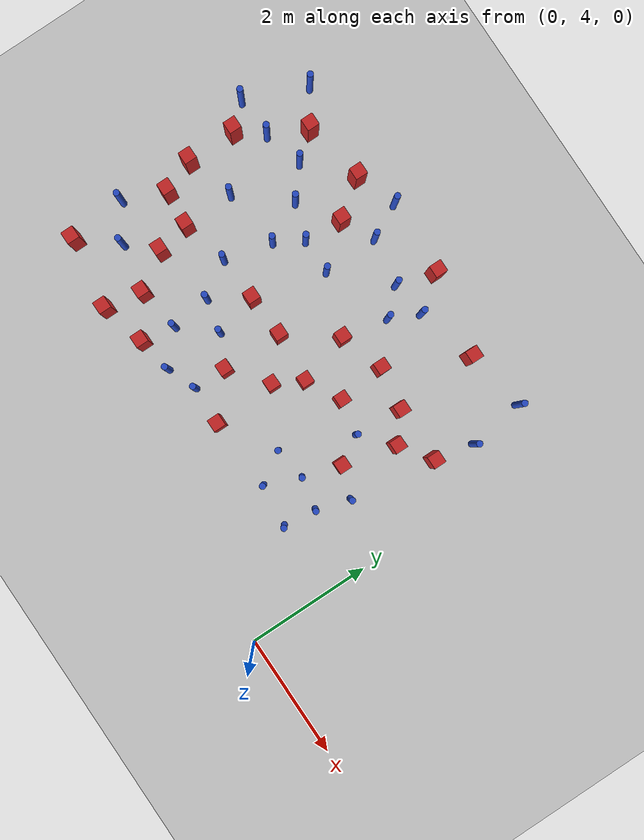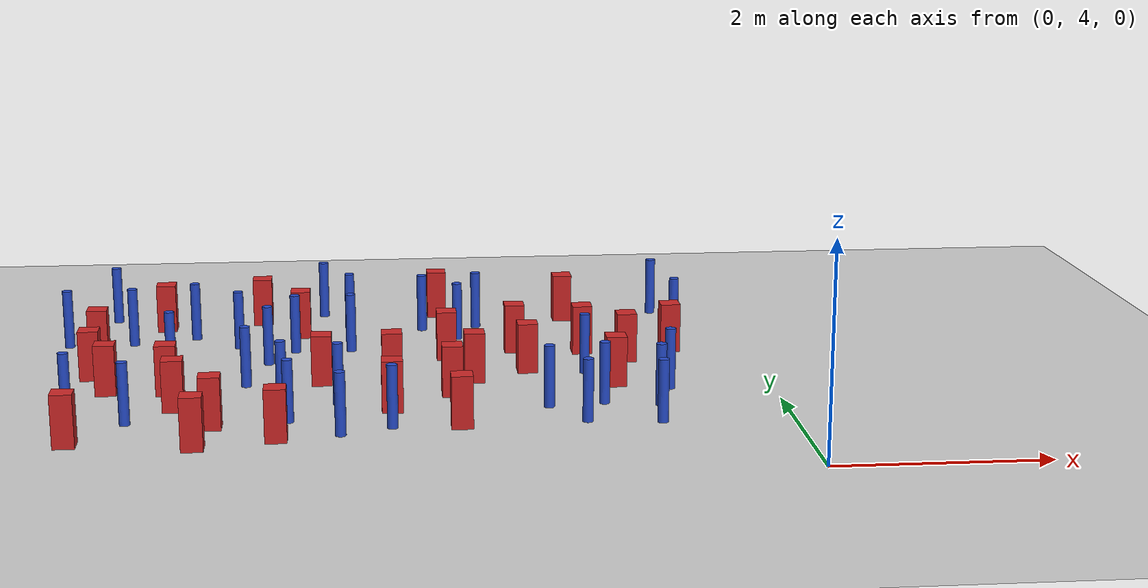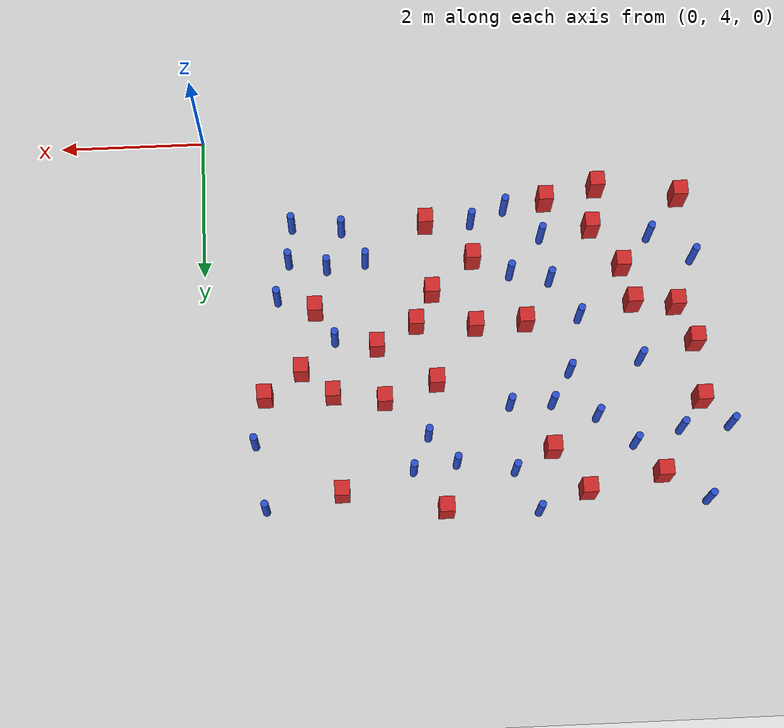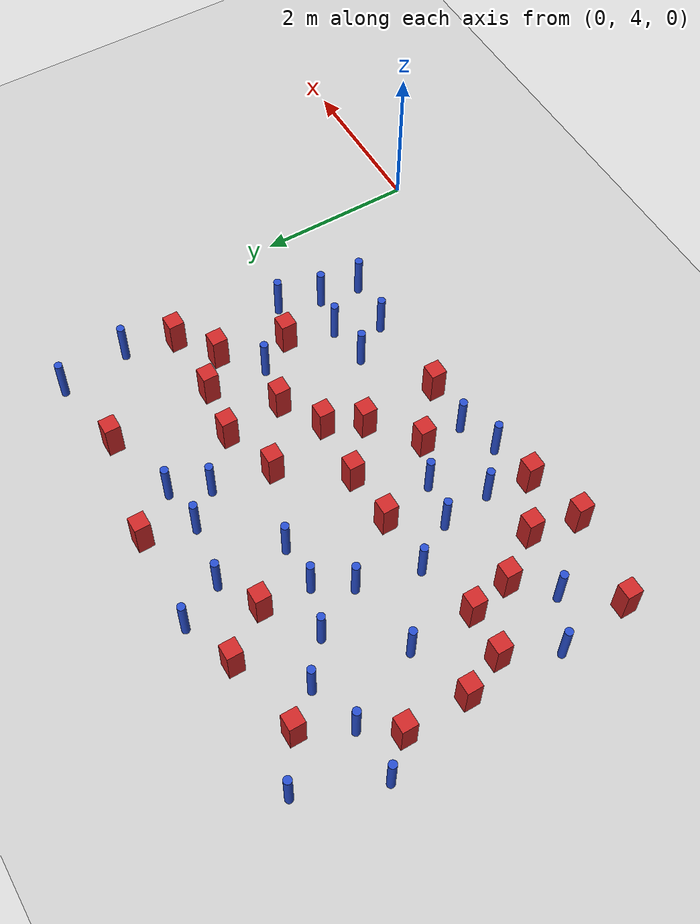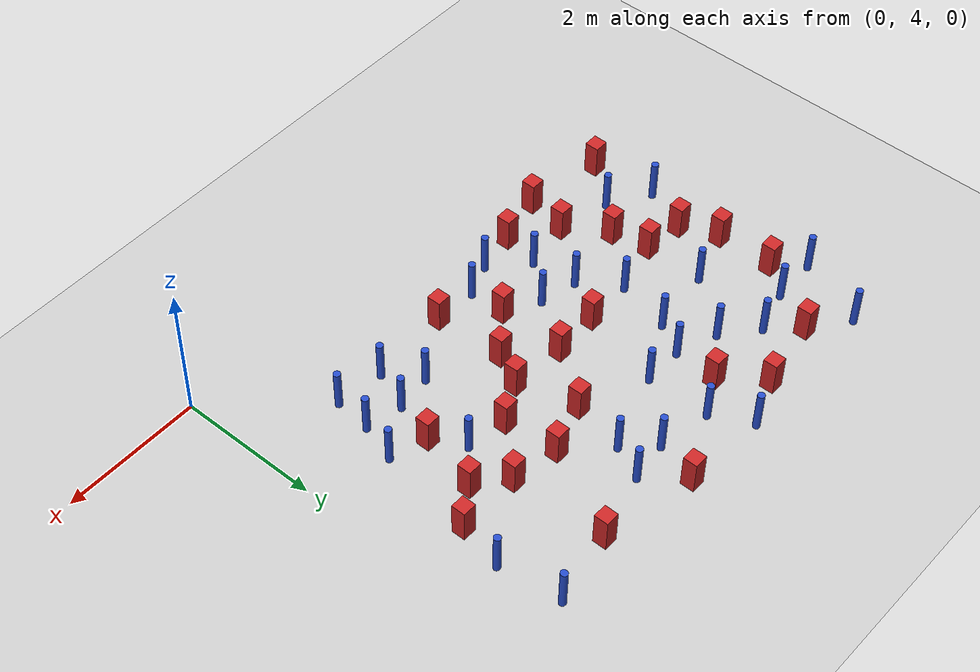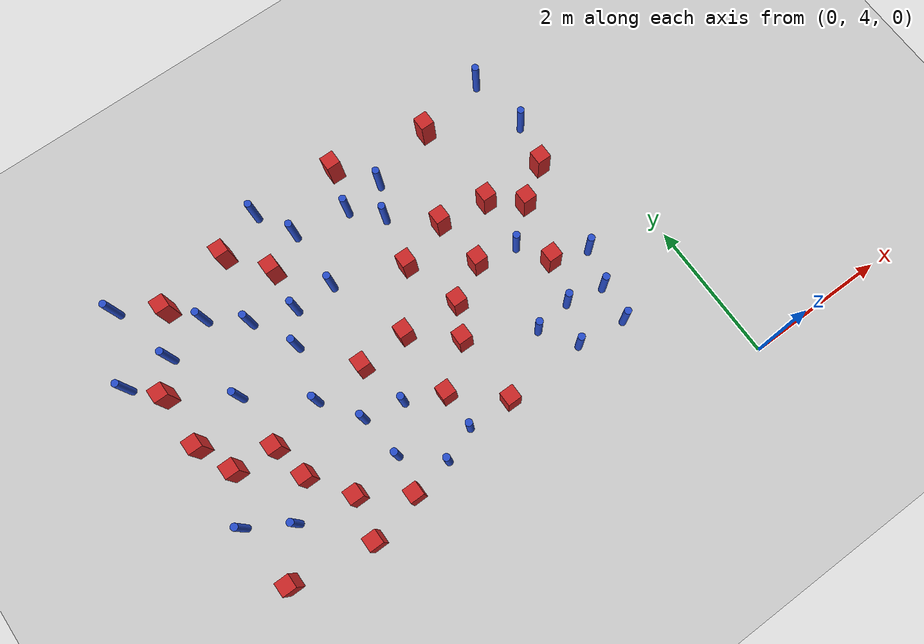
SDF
<sdf version="1.6">
 <world name="default">
  <model name="ground_plane">
   <static>1</static>
   <link name="link">
    <collision name="collision">
     <geometry><plane><normal>0 0 1</normal><size>100 100</size></plane></geometry>
     <surface><friction><ode><mu>100</mu><mu2>50</mu2></ode></friction></surface>
    </collision>
    <visual name="visual">
     <cast_shadows>0</cast_shadows>
     <geometry><plane><normal>0 0 1</normal><size>100 100</size></plane></geometry>
     <material>
      <ambient>1.0 1.0 1.0 1.0</ambient>
      <diffuse>0.8 0.8 0.8 1.0</diffuse>
      <specular>0.01 0.01 0.01 1.000000</specular>
     </material>
    </visual>
   </link>
  </model>
  <model name="square_post_obstacle9">
   <static>true</static>
   <pose>-3.10520400773 7.67391111457 -6.11067671241e-07 -5.50515727128e-06 -8.79689657224e-07 2.37013304536e-05</pose>
   <link name="link">
    <pose>0 0 0.25 0 -0 0</pose>
    <inertial>
     <mass>100</mass>
     <inertia>
      <ixx>0.166667</ixx>
      <ixy>0</ixy>
      <ixz>0</ixz>
      <iyy>0.166667</iyy>
      <iyz>0</iyz>
      <izz>0.166667</izz>
     </inertia>
    </inertial>
    <collision name="collision"><geometry><box><size>.2 .2 .5</size></box></geometry></collision>
    <visual name="visual">
     <geometry><box><size>.2 .2 .5</size></box></geometry>
     <material>
      <script><name>Gazebo/Red</name><uri>file://media/materials/scripts/gazebo.material</uri></script>
     </material>
    </visual>
   </link>
  </model>
  <model name="square_post_obstacle12">
   <static>true</static>
   <pose>-4.59357424023 8.65505979291 -6.11067671241e-07 -5.50515727128e-06 -8.79689657224e-07 2.37013304536e-05</pose>
   <link name="link">
    <pose>0 0 0.25 0 -0 0</pose>
    <inertial>
     <mass>100</mass>
     <inertia>
      <ixx>0.166667</ixx>
      <ixy>0</ixy>
      <ixz>0</ixz>
      <iyy>0.166667</iyy>
      <iyz>0</iyz>
      <izz>0.166667</izz>
     </inertia>
    </inertial>
    <collision name="collision"><geometry><box><size>.2 .2 .5</size></box></geometry></collision>
    <visual name="visual">
     <geometry><box><size>.2 .2 .5</size></box></geometry>
     <material>
      <script><name>Gazebo/Red</name><uri>file://media/materials/scripts/gazebo.material</uri></script>
     </material>
    </visual>
   </link>
  </model>
  <model name="square_post_obstacle17">
   <static>true</static>
   <pose>-3.10708419288 6.39974846675 -6.11067671241e-07 -5.50515727128e-06 -8.79689657224e-07 2.37013304536e-05</pose>
   <link name="link">
    <pose>0 0 0.25 0 -0 0</pose>
    <inertial>
     <mass>100</mass>
     <inertia>
      <ixx>0.166667</ixx>
      <ixy>0</ixy>
      <ixz>0</ixz>
      <iyy>0.166667</iyy>
      <iyz>0</iyz>
      <izz>0.166667</izz>
     </inertia>
    </inertial>
    <collision name="collision"><geometry><box><size>.2 .2 .5</size></box></geometry></collision>
    <visual name="visual">
     <geometry><box><size>.2 .2 .5</size></box></geometry>
     <material>
      <script><name>Gazebo/Red</name><uri>file://media/materials/scripts/gazebo.material</uri></script>
     </material>
    </visual>
   </link>
  </model>
  <model name="square_post_obstacle18">
   <static>true</static>
   <pose>-3.13976255118 9.4031329805 -6.11067671241e-07 -5.50515727128e-06 -8.79689657224e-07 2.37013304536e-05</pose>
   <link name="link">
    <pose>0 0 0.25 0 -0 0</pose>
    <inertial>
     <mass>100</mass>
     <inertia>
      <ixx>0.166667</ixx>
      <ixy>0</ixy>
      <ixz>0</ixz>
      <iyy>0.166667</iyy>
      <iyz>0</iyz>
      <izz>0.166667</izz>
     </inertia>
    </inertial>
    <collision name="collision"><geometry><box><size>.2 .2 .5</size></box></geometry></collision>
    <visual name="visual">
     <geometry><box><size>.2 .2 .5</size></box></geometry>
     <material>
      <script><name>Gazebo/Red</name><uri>file://media/materials/scripts/gazebo.material</uri></script>
     </material>
    </visual>
   </link>
  </model>
  <model name="pole_obstacle11">
   <static>true</static>
   <pose>-5.68892894225 8.63027807105 -9.47619616065e-06 5.49618799737e-07 2.36310414065e-07 -1.55090534796e-07</pose>
   <link name="link">
    <pose>0 0 0.3 0 -0 0</pose>
    <inertial>
     <mass>1</mass>
     <inertia><ixx>0.145833</ixx><ixy>0</ixy><ixz>0</ixz><iyy>0.145833</iyy><iyz>0</iyz><izz>0.125</izz></inertia>
    </inertial>
    <collision name="collision">
     <geometry><cylinder><radius>0.05</radius><length>.6</length></cylinder></geometry>
    </collision>
    <visual name="visual">
     <geometry><cylinder><radius>0.05</radius><length>.6</length></cylinder></geometry>
     <material>
      <script><name>Gazebo/Blue</name><uri>file://media/materials/scripts/gazebo.material</uri></script>
     </material>
    </visual>
   </link>
  </model>
  <model name="pole_obstacle13">
   <static>true</static>
   <pose>-5.8590574564 7.4796731645 -9.47619616065e-06 5.49618799737e-07 2.36310414037e-07 -1.55090534814e-07</pose>
   <link name="link">
    <pose>0 0 0.3 0 -0 0</pose>
    <inertial>
     <mass>1</mass>
     <inertia><ixx>0.145833</ixx><ixy>0</ixy><ixz>0</ixz><iyy>0.145833</iyy><iyz>0</iyz><izz>0.125</izz></inertia>
    </inertial>
    <collision name="collision">
     <geometry><cylinder><radius>0.05</radius><length>.6</length></cylinder></geometry>
    </collision>
    <visual name="visual">
     <geometry><cylinder><radius>0.05</radius><length>.6</length></cylinder></geometry>
     <material>
      <script><name>Gazebo/Blue</name><uri>file://media/materials/scripts/gazebo.material</uri></script>
     </material>
    </visual>
   </link>
  </model>
  <model name="square_post_obstacle25">
   <static>true</static>
   <pose>-5.83177528714 6.65563990809 -6.11067671241e-07 -5.50515727128e-06 -8.79689657224e-07 2.37013304536e-05</pose>
   <link name="link">
    <pose>0 0 0.25 0 -0 0</pose>
    <inertial>
     <mass>100</mass>
     <inertia>
      <ixx>0.166667</ixx>
      <ixy>0</ixy>
      <ixz>0</ixz>
      <iyy>0.166667</iyy>
      <iyz>0</iyz>
      <izz>0.166667</izz>
     </inertia>
    </inertial>
    <collision name="collision"><geometry><box><size>.2 .2 .5</size></box></geometry></collision>
    <visual name="visual">
     <geometry><box><size>.2 .2 .5</size></box></geometry>
     <material>
      <script><name>Gazebo/Red</name><uri>file://media/materials/scripts/gazebo.material</uri></script>
     </material>
    </visual>
   </link>
  </model>
  <model name="square_post_obstacle28">
   <static>true</static>
   <pose>-2.32680000879 7.14502748202 -6.11067671241e-07 -5.50515727128e-06 -8.79689657224e-07 2.37013304536e-05</pose>
   <link name="link">
    <pose>0 0 0.25 0 -0 0</pose>
    <inertial>
     <mass>100</mass>
     <inertia>
      <ixx>0.166667</ixx>
      <ixy>0</ixy>
      <ixz>0</ixz>
      <iyy>0.166667</iyy>
      <iyz>0</iyz>
      <izz>0.166667</izz>
     </inertia>
    </inertial>
    <collision name="collision"><geometry><box><size>.2 .2 .5</size></box></geometry></collision>
    <visual name="visual">
     <geometry><box><size>.2 .2 .5</size></box></geometry>
     <material>
      <script><name>Gazebo/Red</name><uri>file://media/materials/scripts/gazebo.material</uri></script>
     </material>
    </visual>
   </link>
  </model>
  <model name="square_post_obstacle29">
   <static>true</static>
   <pose>-0.80299629133 7.79699949935 -6.11067671241e-07 -5.50515727128e-06 -8.79689657224e-07 2.37013304536e-05</pose>
   <link name="link">
    <pose>0 0 0.25 0 -0 0</pose>
    <inertial>
     <mass>100</mass>
     <inertia>
      <ixx>0.166667</ixx>
      <ixy>0</ixy>
      <ixz>0</ixz>
      <iyy>0.166667</iyy>
      <iyz>0</iyz>
      <izz>0.166667</izz>
     </inertia>
    </inertial>
    <collision name="collision"><geometry><box><size>.2 .2 .5</size></box></geometry></collision>
    <visual name="visual">
     <geometry><box><size>.2 .2 .5</size></box></geometry>
     <material>
      <script><name>Gazebo/Red</name><uri>file://media/materials/scripts/gazebo.material</uri></script>
     </material>
    </visual>
   </link>
  </model>
  <model name="square_post_obstacle34">
   <static>true</static>
   <pose>-6.41081111998 6.71567789708 -6.11067671241e-07 -5.50515727128e-06 -8.79689657224e-07 2.37013304536e-05</pose>
   <link name="link">
    <pose>0 0 0.25 0 -0 0</pose>
    <inertial>
     <mass>100</mass>
     <inertia>
      <ixx>0.166667</ixx>
      <ixy>0</ixy>
      <ixz>0</ixz>
      <iyy>0.166667</iyy>
      <iyz>0</iyz>
      <izz>0.166667</izz>
     </inertia>
    </inertial>
    <collision name="collision"><geometry><box><size>.2 .2 .5</size></box></geometry></collision>
    <visual name="visual">
     <geometry><box><size>.2 .2 .5</size></box></geometry>
     <material>
      <script><name>Gazebo/Red</name><uri>file://media/materials/scripts/gazebo.material</uri></script>
     </material>
    </visual>
   </link>
  </model>
  <model name="pole_obstacle32">
   <static>true</static>
   <pose>-4.89780439327 7.60901924395 -9.47619616065e-06 5.49618799737e-07 2.36310414037e-07 -1.55090534814e-07</pose>
   <link name="link">
    <pose>0 0 0.3 0 -0 0</pose>
    <inertial>
     <mass>1</mass>
     <inertia><ixx>0.145833</ixx><ixy>0</ixy><ixz>0</ixz><iyy>0.145833</iyy><iyz>0</iyz><izz>0.125</izz></inertia>
    </inertial>
    <collision name="collision">
     <geometry><cylinder><radius>0.05</radius><length>.6</length></cylinder></geometry>
    </collision>
    <visual name="visual">
     <geometry><cylinder><radius>0.05</radius><length>.6</length></cylinder></geometry>
     <material>
      <script><name>Gazebo/Blue</name><uri>file://media/materials/scripts/gazebo.material</uri></script>
     </material>
    </visual>
   </link>
  </model>
  <model name="pole_obstacle44">
   <static>true</static>
   <pose>-3.31545016881 8.80118948725 -9.4761961606e-06 5.49618799729e-07 2.36310414e-07 -1.55090534824e-07</pose>
   <link name="link">
    <pose>0 0 0.3 0 -0 0</pose>
    <inertial>
     <mass>1</mass>
     <inertia><ixx>0.145833</ixx><ixy>0</ixy><ixz>0</ixz><iyy>0.145833</iyy><iyz>0</iyz><izz>0.125</izz></inertia>
    </inertial>
    <collision name="collision">
     <geometry><cylinder><radius>0.05</radius><length>.6</length></cylinder></geometry>
    </collision>
    <visual name="visual">
     <geometry><cylinder><radius>0.05</radius><length>.6</length></cylinder></geometry>
     <material>
      <script><name>Gazebo/Blue</name><uri>file://media/materials/scripts/gazebo.material</uri></script>
     </material>
    </visual>
   </link>
  </model>
  <model name="square_post_obstacle50">
   <static>true</static>
   <pose>-2.39990678495 7.90200722985 -6.11067671241e-07 -5.50515727128e-06 -8.79689657224e-07 2.37013304536e-05</pose>
   <link name="link">
    <pose>0 0 0.25 0 -0 0</pose>
    <inertial>
     <mass>100</mass>
     <inertia>
      <ixx>0.166667</ixx>
      <ixy>0</ixy>
      <ixz>0</ixz>
      <iyy>0.166667</iyy>
      <iyz>0</iyz>
      <izz>0.166667</izz>
     </inertia>
    </inertial>
    <collision name="collision"><geometry><box><size>.2 .2 .5</size></box></geometry></collision>
    <visual name="visual">
     <geometry><box><size>.2 .2 .5</size></box></geometry>
     <material>
      <script><name>Gazebo/Red</name><uri>file://media/materials/scripts/gazebo.material</uri></script>
     </material>
    </visual>
   </link>
  </model>
  <model name="square_post_obstacle53">
   <static>true</static>
   <pose>-3.68842915676 5.93941228145 -6.11067671241e-07 -5.50515727128e-06 -8.79689657224e-07 2.37013304536e-05</pose>
   <link name="link">
    <pose>0 0 0.25 0 -0 0</pose>
    <inertial>
     <mass>100</mass>
     <inertia>
      <ixx>0.166667</ixx>
      <ixy>0</ixy>
      <ixz>0</ixz>
      <iyy>0.166667</iyy>
      <iyz>0</iyz>
      <izz>0.166667</izz>
     </inertia>
    </inertial>
    <collision name="collision"><geometry><box><size>.2 .2 .5</size></box></geometry></collision>
    <visual name="visual">
     <geometry><box><size>.2 .2 .5</size></box></geometry>
     <material>
      <script><name>Gazebo/Red</name><uri>file://media/materials/scripts/gazebo.material</uri></script>
     </material>
    </visual>
   </link>
  </model>
  <model name="pole_obstacle87">
   <static>true</static>
   <pose>-2.21909085241 5.92590816374 -9.47619616065e-06 5.49618799738e-07 2.3631041406e-07 -1.55090534801e-07</pose>
   <link name="link">
    <pose>0 0 0.3 0 -0 0</pose>
    <inertial>
     <mass>1</mass>
     <inertia><ixx>0.145833</ixx><ixy>0</ixy><ixz>0</ixz><iyy>0.145833</iyy><iyz>0</iyz><izz>0.125</izz></inertia>
    </inertial>
    <collision name="collision">
     <geometry><cylinder><radius>0.05</radius><length>.6</length></cylinder></geometry>
    </collision>
    <visual name="visual">
     <geometry><cylinder><radius>0.05</radius><length>.6</length></cylinder></geometry>
     <material>
      <script><name>Gazebo/Blue</name><uri>file://media/materials/scripts/gazebo.material</uri></script>
     </material>
    </visual>
   </link>
  </model>
  <model name="pole_obstacle89">
   <static>true</static>
   <pose>-1.68885730381 5.99806314761 -9.47619616065e-06 5.49618799737e-07 2.36310414061e-07 -1.550905348e-07</pose>
   <link name="link">
    <pose>0 0 0.3 0 -0 0</pose>
    <inertial>
     <mass>1</mass>
     <inertia><ixx>0.145833</ixx><ixy>0</ixy><ixz>0</ixz><iyy>0.145833</iyy><iyz>0</iyz><izz>0.125</izz></inertia>
    </inertial>
    <collision name="collision">
     <geometry><cylinder><radius>0.05</radius><length>.6</length></cylinder></geometry>
    </collision>
    <visual name="visual">
     <geometry><cylinder><radius>0.05</radius><length>.6</length></cylinder></geometry>
     <material>
      <script><name>Gazebo/Blue</name><uri>file://media/materials/scripts/gazebo.material</uri></script>
     </material>
    </visual>
   </link>
  </model>
  <model name="pole_obstacle90">
   <static>true</static>
   <pose>-2.95869986248 8.41366337919 -9.4761961606e-06 5.49618799729e-07 2.36310414e-07 -1.55090534824e-07</pose>
   <link name="link">
    <pose>0 0 0.3 0 -0 0</pose>
    <inertial>
     <mass>1</mass>
     <inertia><ixx>0.145833</ixx><ixy>0</ixy><ixz>0</ixz><iyy>0.145833</iyy><iyz>0</iyz><izz>0.125</izz></inertia>
    </inertial>
    <collision name="collision">
     <geometry><cylinder><radius>0.05</radius><length>.6</length></cylinder></geometry>
    </collision>
    <visual name="visual">
     <geometry><cylinder><radius>0.05</radius><length>.6</length></cylinder></geometry>
     <material>
      <script><name>Gazebo/Blue</name><uri>file://media/materials/scripts/gazebo.material</uri></script>
     </material>
    </visual>
   </link>
  </model>
  <model name="pole_obstacle91">
   <static>true</static>
   <pose>-4.08137680585 8.92950105228 -9.47619616065e-06 5.49618799737e-07 2.36310414065e-07 -1.55090534796e-07</pose>
   <link name="link">
    <pose>0 0 0.3 0 -0 0</pose>
    <inertial>
     <mass>1</mass>
     <inertia><ixx>0.145833</ixx><ixy>0</ixy><ixz>0</ixz><iyy>0.145833</iyy><iyz>0</iyz><izz>0.125</izz></inertia>
    </inertial>
    <collision name="collision">
     <geometry><cylinder><radius>0.05</radius><length>.6</length></cylinder></geometry>
    </collision>
    <visual name="visual">
     <geometry><cylinder><radius>0.05</radius><length>.6</length></cylinder></geometry>
     <material>
      <script><name>Gazebo/Blue</name><uri>file://media/materials/scripts/gazebo.material</uri></script>
     </material>
    </visual>
   </link>
  </model>
  <model name="pole_obstacle106">
   <static>true</static>
   <pose>-4.19222896986 6.18269097495 -9.47619616065e-06 5.49618799737e-07 2.36310414037e-07 -1.55090534814e-07</pose>
   <link name="link">
    <pose>0 0 0.3 0 -0 0</pose>
    <inertial>
     <mass>1</mass>
     <inertia><ixx>0.145833</ixx><ixy>0</ixy><ixz>0</ixz><iyy>0.145833</iyy><iyz>0</iyz><izz>0.125</izz></inertia>
    </inertial>
    <collision name="collision">
     <geometry><cylinder><radius>0.05</radius><length>.6</length></cylinder></geometry>
    </collision>
    <visual name="visual">
     <geometry><cylinder><radius>0.05</radius><length>.6</length></cylinder></geometry>
     <material>
      <script><name>Gazebo/Blue</name><uri>file://media/materials/scripts/gazebo.material</uri></script>
     </material>
    </visual>
   </link>
  </model>
  <model name="pole_obstacle108">
   <static>true</static>
   <pose>-6.70554110216 6.05481949887 -9.47619616065e-06 5.49618799737e-07 2.36310414037e-07 -1.55090534814e-07</pose>
   <link name="link">
    <pose>0 0 0.3 0 -0 0</pose>
    <inertial>
     <mass>1</mass>
     <inertia><ixx>0.145833</ixx><ixy>0</ixy><ixz>0</ixz><iyy>0.145833</iyy><iyz>0</iyz><izz>0.125</izz></inertia>
    </inertial>
    <collision name="collision">
     <geometry><cylinder><radius>0.05</radius><length>.6</length></cylinder></geometry>
    </collision>
    <visual name="visual">
     <geometry><cylinder><radius>0.05</radius><length>.6</length></cylinder></geometry>
     <material>
      <script><name>Gazebo/Blue</name><uri>file://media/materials/scripts/gazebo.material</uri></script>
     </material>
    </visual>
   </link>
  </model>
  <model name="pole_obstacle118">
   <static>true</static>
   <pose>-1.22582894746 5.36766510773 -9.47619616065e-06 5.49618799737e-07 2.36310414061e-07 -1.550905348e-07</pose>
   <link name="link">
    <pose>0 0 0.3 0 -0 0</pose>
    <inertial>
     <mass>1</mass>
     <inertia><ixx>0.145833</ixx><ixy>0</ixy><ixz>0</ixz><iyy>0.145833</iyy><iyz>0</iyz><izz>0.125</izz></inertia>
    </inertial>
    <collision name="collision">
     <geometry><cylinder><radius>0.05</radius><length>.6</length></cylinder></geometry>
    </collision>
    <visual name="visual">
     <geometry><cylinder><radius>0.05</radius><length>.6</length></cylinder></geometry>
     <material>
      <script><name>Gazebo/Blue</name><uri>file://media/materials/scripts/gazebo.material</uri></script>
     </material>
    </visual>
   </link>
  </model>
  <model name="square_post_obstacle110">
   <static>true</static>
   <pose>-5.01406977634 9.22863512362 -6.11067671241e-07 -5.50515727128e-06 -8.79689657224e-07 2.37013304536e-05</pose>
   <link name="link">
    <pose>0 0 0.25 0 -0 0</pose>
    <inertial>
     <mass>100</mass>
     <inertia>
      <ixx>0.166667</ixx>
      <ixy>0</ixy>
      <ixz>0</ixz>
      <iyy>0.166667</iyy>
      <iyz>0</iyz>
      <izz>0.166667</izz>
     </inertia>
    </inertial>
    <collision name="collision"><geometry><box><size>.2 .2 .5</size></box></geometry></collision>
    <visual name="visual">
     <geometry><box><size>.2 .2 .5</size></box></geometry>
     <material>
      <script><name>Gazebo/Red</name><uri>file://media/materials/scripts/gazebo.material</uri></script>
     </material>
    </visual>
   </link>
  </model>
  <model name="square_post_obstacle111">
   <static>true</static>
   <pose>-5.34558124098 5.550273098 -6.11067671241e-07 -5.50515727128e-06 -8.79689657224e-07 2.37013304536e-05</pose>
   <link name="link">
    <pose>0 0 0.25 0 -0 0</pose>
    <inertial>
     <mass>100</mass>
     <inertia>
      <ixx>0.166667</ixx>
      <ixy>0</ixy>
      <ixz>0</ixz>
      <iyy>0.166667</iyy>
      <iyz>0</iyz>
      <izz>0.166667</izz>
     </inertia>
    </inertial>
    <collision name="collision"><geometry><box><size>.2 .2 .5</size></box></geometry></collision>
    <visual name="visual">
     <geometry><box><size>.2 .2 .5</size></box></geometry>
     <material>
      <script><name>Gazebo/Red</name><uri>file://media/materials/scripts/gazebo.material</uri></script>
     </material>
    </visual>
   </link>
  </model>
  <model name="pole_obstacle121">
   <static>true</static>
   <pose>-1.90893864054 5.44775988716 -9.47619616065e-06 5.49618799737e-07 2.36310414061e-07 -1.550905348e-07</pose>
   <link name="link">
    <pose>0 0 0.3 0 -0 0</pose>
    <inertial>
     <mass>1</mass>
     <inertia><ixx>0.145833</ixx><ixy>0</ixy><ixz>0</ixz><iyy>0.145833</iyy><iyz>0</iyz><izz>0.125</izz></inertia>
    </inertial>
    <collision name="collision">
     <geometry><cylinder><radius>0.05</radius><length>.6</length></cylinder></geometry>
    </collision>
    <visual name="visual">
     <geometry><cylinder><radius>0.05</radius><length>.6</length></cylinder></geometry>
     <material>
      <script><name>Gazebo/Blue</name><uri>file://media/materials/scripts/gazebo.material</uri></script>
     </material>
    </visual>
   </link>
  </model>
  <model name="pole_obstacle132">
   <static>true</static>
   <pose>-5.22111645906 8.24037704639 -9.47619616065e-06 5.49618799737e-07 2.36310414065e-07 -1.55090534796e-07</pose>
   <link name="link">
    <pose>0 0 0.3 0 -0 0</pose>
    <inertial>
     <mass>1</mass>
     <inertia><ixx>0.145833</ixx><ixy>0</ixy><ixz>0</ixz><iyy>0.145833</iyy><iyz>0</iyz><izz>0.125</izz></inertia>
    </inertial>
    <collision name="collision">
     <geometry><cylinder><radius>0.05</radius><length>.6</length></cylinder></geometry>
    </collision>
    <visual name="visual">
     <geometry><cylinder><radius>0.05</radius><length>.6</length></cylinder></geometry>
     <material>
      <script><name>Gazebo/Blue</name><uri>file://media/materials/scripts/gazebo.material</uri></script>
     </material>
    </visual>
   </link>
  </model>
  <model name="pole_obstacle136">
   <static>true</static>
   <pose>-4.36138820411 9.4787079076 -9.47619616065e-06 5.49618799737e-07 2.36310414065e-07 -1.55090534796e-07</pose>
   <link name="link">
    <pose>0 0 0.3 0 -0 0</pose>
    <inertial>
     <mass>1</mass>
     <inertia><ixx>0.145833</ixx><ixy>0</ixy><ixz>0</ixz><iyy>0.145833</iyy><iyz>0</iyz><izz>0.125</izz></inertia>
    </inertial>
    <collision name="collision">
     <geometry><cylinder><radius>0.05</radius><length>.6</length></cylinder></geometry>
    </collision>
    <visual name="visual">
     <geometry><cylinder><radius>0.05</radius><length>.6</length></cylinder></geometry>
     <material>
      <script><name>Gazebo/Blue</name><uri>file://media/materials/scripts/gazebo.material</uri></script>
     </material>
    </visual>
   </link>
  </model>
  <model name="square_post_obstacle132">
   <static>true</static>
   <pose>-3.06743627781 5.39423438234 -6.11067671241e-07 -5.50515727128e-06 -8.79689657224e-07 2.37013304536e-05</pose>
   <link name="link">
    <pose>0 0 0.25 0 -0 0</pose>
    <inertial>
     <mass>100</mass>
     <inertia>
      <ixx>0.166667</ixx>
      <ixy>0</ixy>
      <ixz>0</ixz>
      <iyy>0.166667</iyy>
      <iyz>0</iyz>
      <izz>0.166667</izz>
     </inertia>
    </inertial>
    <collision name="collision"><geometry><box><size>.2 .2 .5</size></box></geometry></collision>
    <visual name="visual">
     <geometry><box><size>.2 .2 .5</size></box></geometry>
     <material>
      <script><name>Gazebo/Red</name><uri>file://media/materials/scripts/gazebo.material</uri></script>
     </material>
    </visual>
   </link>
  </model>
  <model name="square_post_obstacle134">
   <static>true</static>
   <pose>-2.87106219257 6.8459728696 -6.11067671241e-07 -5.50515727128e-06 -8.79689657224e-07 2.37013304536e-05</pose>
   <link name="link">
    <pose>0 0 0.25 0 -0 0</pose>
    <inertial>
     <mass>100</mass>
     <inertia>
      <ixx>0.166667</ixx>
      <ixy>0</ixy>
      <ixz>0</ixz>
      <iyy>0.166667</iyy>
      <iyz>0</iyz>
      <izz>0.166667</izz>
     </inertia>
    </inertial>
    <collision name="collision"><geometry><box><size>.2 .2 .5</size></box></geometry></collision>
    <visual name="visual">
     <geometry><box><size>.2 .2 .5</size></box></geometry>
     <material>
      <script><name>Gazebo/Red</name><uri>file://media/materials/scripts/gazebo.material</uri></script>
     </material>
    </visual>
   </link>
  </model>
  <model name="pole_obstacle147">
   <static>true</static>
   <pose>-5.08563711147 6.84322508953 -9.47619616065e-06 5.49618799737e-07 2.36310414037e-07 -1.55090534814e-07</pose>
   <link name="link">
    <pose>0 0 0.3 0 -0 0</pose>
    <inertial>
     <mass>1</mass>
     <inertia><ixx>0.145833</ixx><ixy>0</ixy><ixz>0</ixz><iyy>0.145833</iyy><iyz>0</iyz><izz>0.125</izz></inertia>
    </inertial>
    <collision name="collision">
     <geometry><cylinder><radius>0.05</radius><length>.6</length></cylinder></geometry>
    </collision>
    <visual name="visual">
     <geometry><cylinder><radius>0.05</radius><length>.6</length></cylinder></geometry>
     <material>
      <script><name>Gazebo/Blue</name><uri>file://media/materials/scripts/gazebo.material</uri></script>
     </material>
    </visual>
   </link>
  </model>
  <model name="square_post_obstacle140">
   <static>true</static>
   <pose>-5.46480805117 4.94998237772 -6.11067671241e-07 -5.50515727128e-06 -8.79689657224e-07 2.37013304536e-05</pose>
   <link name="link">
    <pose>0 0 0.25 0 -0 0</pose>
    <inertial>
     <mass>100</mass>
     <inertia>
      <ixx>0.166667</ixx>
      <ixy>0</ixy>
      <ixz>0</ixz>
      <iyy>0.166667</iyy>
      <iyz>0</iyz>
      <izz>0.166667</izz>
     </inertia>
    </inertial>
    <collision name="collision"><geometry><box><size>.2 .2 .5</size></box></geometry></collision>
    <visual name="visual">
     <geometry><box><size>.2 .2 .5</size></box></geometry>
     <material>
      <script><name>Gazebo/Red</name><uri>file://media/materials/scripts/gazebo.material</uri></script>
     </material>
    </visual>
   </link>
  </model>
  <model name="pole_obstacle153">
   <static>true</static>
   <pose>-1.16851993089 5.89321200725 -9.47619616065e-06 5.49618799737e-07 2.36310414061e-07 -1.550905348e-07</pose>
   <link name="link">
    <pose>0 0 0.3 0 -0 0</pose>
    <inertial>
     <mass>1</mass>
     <inertia><ixx>0.145833</ixx><ixy>0</ixy><ixz>0</ixz><iyy>0.145833</iyy><iyz>0</iyz><izz>0.125</izz></inertia>
    </inertial>
    <collision name="collision">
     <geometry><cylinder><radius>0.05</radius><length>.6</length></cylinder></geometry>
    </collision>
    <visual name="visual">
     <geometry><cylinder><radius>0.05</radius><length>.6</length></cylinder></geometry>
     <material>
      <script><name>Gazebo/Blue</name><uri>file://media/materials/scripts/gazebo.material</uri></script>
     </material>
    </visual>
   </link>
  </model>
  <model name="pole_obstacle158">
   <static>true</static>
   <pose>-1.00125299259 6.42491153706 -9.47619616065e-06 5.49618799737e-07 2.36310414062e-07 -1.55090534799e-07</pose>
   <link name="link">
    <pose>0 0 0.3 0 -0 0</pose>
    <inertial>
     <mass>1</mass>
     <inertia><ixx>0.145833</ixx><ixy>0</ixy><ixz>0</ixz><iyy>0.145833</iyy><iyz>0</iyz><izz>0.125</izz></inertia>
    </inertial>
    <collision name="collision">
     <geometry><cylinder><radius>0.05</radius><length>.6</length></cylinder></geometry>
    </collision>
    <visual name="visual">
     <geometry><cylinder><radius>0.05</radius><length>.6</length></cylinder></geometry>
     <material>
      <script><name>Gazebo/Blue</name><uri>file://media/materials/scripts/gazebo.material</uri></script>
     </material>
    </visual>
   </link>
  </model>
  <model name="square_post_obstacle152">
   <static>true</static>
   <pose>-6.59672201512 5.13359720352 -6.11067671241e-07 -5.50515727128e-06 -8.79689657224e-07 2.37013304536e-05</pose>
   <link name="link">
    <pose>0 0 0.25 0 -0 0</pose>
    <inertial>
     <mass>100</mass>
     <inertia>
      <ixx>0.166667</ixx>
      <ixy>0</ixy>
      <ixz>0</ixz>
      <iyy>0.166667</iyy>
      <iyz>0</iyz>
      <izz>0.166667</izz>
     </inertia>
    </inertial>
    <collision name="collision"><geometry><box><size>.2 .2 .5</size></box></geometry></collision>
    <visual name="visual">
     <geometry><box><size>.2 .2 .5</size></box></geometry>
     <material>
      <script><name>Gazebo/Red</name><uri>file://media/materials/scripts/gazebo.material</uri></script>
     </material>
    </visual>
   </link>
  </model>
  <model name="pole_obstacle161">
   <static>true</static>
   <pose>-4.64735872723 5.66051486717 -9.47619616065e-06 5.49618799737e-07 2.36310414037e-07 -1.55090534814e-07</pose>
   <link name="link">
    <pose>0 0 0.3 0 -0 0</pose>
    <inertial>
     <mass>1</mass>
     <inertia><ixx>0.145833</ixx><ixy>0</ixy><ixz>0</ixz><iyy>0.145833</iyy><iyz>0</iyz><izz>0.125</izz></inertia>
    </inertial>
    <collision name="collision">
     <geometry><cylinder><radius>0.05</radius><length>.6</length></cylinder></geometry>
    </collision>
    <visual name="visual">
     <geometry><cylinder><radius>0.05</radius><length>.6</length></cylinder></geometry>
     <material>
      <script><name>Gazebo/Blue</name><uri>file://media/materials/scripts/gazebo.material</uri></script>
     </material>
    </visual>
   </link>
  </model>
  <model name="pole_obstacle163">
   <static>true</static>
   <pose>-1.76450702223 7.03633803925 -9.47619616065e-06 5.49618799737e-07 2.36310414061e-07 -1.550905348e-07</pose>
   <link name="link">
    <pose>0 0 0.3 0 -0 0</pose>
    <inertial>
     <mass>1</mass>
     <inertia><ixx>0.145833</ixx><ixy>0</ixy><ixz>0</ixz><iyy>0.145833</iyy><iyz>0</iyz><izz>0.125</izz></inertia>
    </inertial>
    <collision name="collision">
     <geometry><cylinder><radius>0.05</radius><length>.6</length></cylinder></geometry>
    </collision>
    <visual name="visual">
     <geometry><cylinder><radius>0.05</radius><length>.6</length></cylinder></geometry>
     <material>
      <script><name>Gazebo/Blue</name><uri>file://media/materials/scripts/gazebo.material</uri></script>
     </material>
    </visual>
   </link>
  </model>
  <model name="square_post_obstacle157">
   <static>true</static>
   <pose>-1.78697796886 9.13460655473 -6.11067671241e-07 -5.50515727128e-06 -8.79689657224e-07 2.37013304536e-05</pose>
   <link name="link">
    <pose>0 0 0.25 0 -0 0</pose>
    <inertial>
     <mass>100</mass>
     <inertia>
      <ixx>0.166667</ixx>
      <ixy>0</ixy>
      <ixz>0</ixz>
      <iyy>0.166667</iyy>
      <iyz>0</iyz>
      <izz>0.166667</izz>
     </inertia>
    </inertial>
    <collision name="collision"><geometry><box><size>.2 .2 .5</size></box></geometry></collision>
    <visual name="visual">
     <geometry><box><size>.2 .2 .5</size></box></geometry>
     <material>
      <script><name>Gazebo/Red</name><uri>file://media/materials/scripts/gazebo.material</uri></script>
     </material>
    </visual>
   </link>
  </model>
  <model name="pole_obstacle166">
   <static>true</static>
   <pose>-6.5836197024 9.41660353634 -9.47619616065e-06 5.49618799737e-07 2.36310414065e-07 -1.55090534796e-07</pose>
   <link name="link">
    <pose>0 0 0.3 0 -0 0</pose>
    <inertial>
     <mass>1</mass>
     <inertia><ixx>0.145833</ixx><ixy>0</ixy><ixz>0</ixz><iyy>0.145833</iyy><iyz>0</iyz><izz>0.125</izz></inertia>
    </inertial>
    <collision name="collision">
     <geometry><cylinder><radius>0.05</radius><length>.6</length></cylinder></geometry>
    </collision>
    <visual name="visual">
     <geometry><cylinder><radius>0.05</radius><length>.6</length></cylinder></geometry>
     <material>
      <script><name>Gazebo/Blue</name><uri>file://media/materials/scripts/gazebo.material</uri></script>
     </material>
    </visual>
   </link>
  </model>
  <model name="pole_obstacle171">
   <static>true</static>
   <pose>-0.781773965758 9.3216545401 -9.47619616065e-06 5.49618799737e-07 2.36310414038e-07 -1.55090534813e-07</pose>
   <link name="link">
    <pose>0 0 0.3 0 -0 0</pose>
    <inertial>
     <mass>1</mass>
     <inertia><ixx>0.145833</ixx><ixy>0</ixy><ixz>0</ixz><iyy>0.145833</iyy><iyz>0</iyz><izz>0.125</izz></inertia>
    </inertial>
    <collision name="collision">
     <geometry><cylinder><radius>0.05</radius><length>.6</length></cylinder></geometry>
    </collision>
    <visual name="visual">
     <geometry><cylinder><radius>0.05</radius><length>.6</length></cylinder></geometry>
     <material>
      <script><name>Gazebo/Blue</name><uri>file://media/materials/scripts/gazebo.material</uri></script>
     </material>
    </visual>
   </link>
  </model>
  <model name="pole_obstacle174">
   <static>true</static>
   <pose>-4.72887429981 6.29952814697 -9.47619616065e-06 5.49618799737e-07 2.36310414037e-07 -1.55090534814e-07</pose>
   <link name="link">
    <pose>0 0 0.3 0 -0 0</pose>
    <inertial>
     <mass>1</mass>
     <inertia><ixx>0.145833</ixx><ixy>0</ixy><ixz>0</ixz><iyy>0.145833</iyy><iyz>0</iyz><izz>0.125</izz></inertia>
    </inertial>
    <collision name="collision">
     <geometry><cylinder><radius>0.05</radius><length>.6</length></cylinder></geometry>
    </collision>
    <visual name="visual">
     <geometry><cylinder><radius>0.05</radius><length>.6</length></cylinder></geometry>
     <material>
      <script><name>Gazebo/Blue</name><uri>file://media/materials/scripts/gazebo.material</uri></script>
     </material>
    </visual>
   </link>
  </model>
  <model name="pole_obstacle180">
   <static>true</static>
   <pose>-4.63759900778 8.03811379057 -9.47619616065e-06 5.49618799737e-07 2.36310414048e-07 -1.55090534806e-07</pose>
   <link name="link">
    <pose>0 0 0.3 0 -0 0</pose>
    <inertial>
     <mass>1</mass>
     <inertia><ixx>0.145833</ixx><ixy>0</ixy><ixz>0</ixz><iyy>0.145833</iyy><iyz>0</iyz><izz>0.125</izz></inertia>
    </inertial>
    <collision name="collision">
     <geometry><cylinder><radius>0.05</radius><length>.6</length></cylinder></geometry>
    </collision>
    <visual name="visual">
     <geometry><cylinder><radius>0.05</radius><length>.6</length></cylinder></geometry>
     <material>
      <script><name>Gazebo/Blue</name><uri>file://media/materials/scripts/gazebo.material</uri></script>
     </material>
    </visual>
   </link>
  </model>
  <model name="pole_obstacle181">
   <static>true</static>
   <pose>-6.13420948076 5.70394954944 -9.47619616065e-06 5.49618799737e-07 2.36310414037e-07 -1.55090534814e-07</pose>
   <link name="link">
    <pose>0 0 0.3 0 -0 0</pose>
    <inertial>
     <mass>1</mass>
     <inertia><ixx>0.145833</ixx><ixy>0</ixy><ixz>0</ixz><iyy>0.145833</iyy><iyz>0</iyz><izz>0.125</izz></inertia>
    </inertial>
    <collision name="collision">
     <geometry><cylinder><radius>0.05</radius><length>.6</length></cylinder></geometry>
    </collision>
    <visual name="visual">
     <geometry><cylinder><radius>0.05</radius><length>.6</length></cylinder></geometry>
     <material>
      <script><name>Gazebo/Blue</name><uri>file://media/materials/scripts/gazebo.material</uri></script>
     </material>
    </visual>
   </link>
  </model>
  <model name="pole_obstacle185">
   <static>true</static>
   <pose>-0.65810574908 8.43644554524 -9.47619616065e-06 5.49618799737e-07 2.36310414038e-07 -1.55090534813e-07</pose>
   <link name="link">
    <pose>0 0 0.3 0 -0 0</pose>
    <inertial>
     <mass>1</mass>
     <inertia><ixx>0.145833</ixx><ixy>0</ixy><ixz>0</ixz><iyy>0.145833</iyy><iyz>0</iyz><izz>0.125</izz></inertia>
    </inertial>
    <collision name="collision">
     <geometry><cylinder><radius>0.05</radius><length>.6</length></cylinder></geometry>
    </collision>
    <visual name="visual">
     <geometry><cylinder><radius>0.05</radius><length>.6</length></cylinder></geometry>
     <material>
      <script><name>Gazebo/Blue</name><uri>file://media/materials/scripts/gazebo.material</uri></script>
     </material>
    </visual>
   </link>
  </model>
  <model name="pole_obstacle187">
   <static>true</static>
   <pose>-6.31868444672 8.45355847555 -9.47619616065e-06 5.49618799737e-07 2.36310414065e-07 -1.55090534796e-07</pose>
   <link name="link">
    <pose>0 0 0.3 0 -0 0</pose>
    <inertial>
     <mass>1</mass>
     <inertia><ixx>0.145833</ixx><ixy>0</ixy><ixz>0</ixz><iyy>0.145833</iyy><iyz>0</iyz><izz>0.125</izz></inertia>
    </inertial>
    <collision name="collision">
     <geometry><cylinder><radius>0.05</radius><length>.6</length></cylinder></geometry>
    </collision>
    <visual name="visual">
     <geometry><cylinder><radius>0.05</radius><length>.6</length></cylinder></geometry>
     <material>
      <script><name>Gazebo/Blue</name><uri>file://media/materials/scripts/gazebo.material</uri></script>
     </material>
    </visual>
   </link>
  </model>
  <model name="square_post_obstacle183">
   <static>true</static>
   <pose>-1.50987133093 6.59828478231 -6.11067671241e-07 -5.50515727128e-06 -8.79689657224e-07 2.37013304536e-05</pose>
   <link name="link">
    <pose>0 0 0.25 0 -0 0</pose>
    <inertial>
     <mass>100</mass>
     <inertia>
      <ixx>0.166667</ixx>
      <ixy>0</ixy>
      <ixz>0</ixz>
      <iyy>0.166667</iyy>
      <iyz>0</iyz>
      <izz>0.166667</izz>
     </inertia>
    </inertial>
    <collision name="collision"><geometry><box><size>.2 .2 .5</size></box></geometry></collision>
    <visual name="visual">
     <geometry><box><size>.2 .2 .5</size></box></geometry>
     <material>
      <script><name>Gazebo/Red</name><uri>file://media/materials/scripts/gazebo.material</uri></script>
     </material>
    </visual>
   </link>
  </model>
  <model name="square_post_obstacle191">
   <static>true</static>
   <pose>-3.67170667967 6.90880596 -6.11067671241e-07 -5.50515727128e-06 -8.79689657224e-07 2.37013304536e-05</pose>
   <link name="link">
    <pose>0 0 0.25 0 -0 0</pose>
    <inertial>
     <mass>100</mass>
     <inertia>
      <ixx>0.166667</ixx>
      <ixy>0</ixy>
      <ixz>0</ixz>
      <iyy>0.166667</iyy>
      <iyz>0</iyz>
      <izz>0.166667</izz>
     </inertia>
    </inertial>
    <collision name="collision"><geometry><box><size>.2 .2 .5</size></box></geometry></collision>
    <visual name="visual">
     <geometry><box><size>.2 .2 .5</size></box></geometry>
     <material>
      <script><name>Gazebo/Red</name><uri>file://media/materials/scripts/gazebo.material</uri></script>
     </material>
    </visual>
   </link>
  </model>
  <model name="square_post_obstacle193">
   <static>true</static>
   <pose>-5.72479641321 6.12510439406 -6.11067671241e-07 -5.50515727128e-06 -8.79689657224e-07 2.37013304536e-05</pose>
   <link name="link">
    <pose>0 0 0.25 0 -0 0</pose>
    <inertial>
     <mass>100</mass>
     <inertia>
      <ixx>0.166667</ixx>
      <ixy>0</ixy>
      <ixz>0</ixz>
      <iyy>0.166667</iyy>
      <iyz>0</iyz>
      <izz>0.166667</izz>
     </inertia>
    </inertial>
    <collision name="collision"><geometry><box><size>.2 .2 .5</size></box></geometry></collision>
    <visual name="visual">
     <geometry><box><size>.2 .2 .5</size></box></geometry>
     <material>
      <script><name>Gazebo/Red</name><uri>file://media/materials/scripts/gazebo.material</uri></script>
     </material>
    </visual>
   </link>
  </model>
  <model name="square_post_obstacle194">
   <static>true</static>
   <pose>-1.71322314415 7.79558767806 -6.11067671241e-07 -5.50515727128e-06 -8.79689657224e-07 2.37013304536e-05</pose>
   <link name="link">
    <pose>0 0 0.25 0 -0 0</pose>
    <inertial>
     <mass>100</mass>
     <inertia>
      <ixx>0.166667</ixx>
      <ixy>0</ixy>
      <ixz>0</ixz>
      <iyy>0.166667</iyy>
      <iyz>0</iyz>
      <izz>0.166667</izz>
     </inertia>
    </inertial>
    <collision name="collision"><geometry><box><size>.2 .2 .5</size></box></geometry></collision>
    <visual name="visual">
     <geometry><box><size>.2 .2 .5</size></box></geometry>
     <material>
      <script><name>Gazebo/Red</name><uri>file://media/materials/scripts/gazebo.material</uri></script>
     </material>
    </visual>
   </link>
  </model>
  <model name="square_post_obstacle197">
   <static>true</static>
   <pose>-6.62270178769 7.24322714325 -6.11067671241e-07 -5.50515727128e-06 -8.79689657224e-07 2.37013304536e-05</pose>
   <link name="link">
    <pose>0 0 0.25 0 -0 0</pose>
    <inertial>
     <mass>100</mass>
     <inertia>
      <ixx>0.166667</ixx>
      <ixy>0</ixy>
      <ixz>0</ixz>
      <iyy>0.166667</iyy>
      <iyz>0</iyz>
      <izz>0.166667</izz>
     </inertia>
    </inertial>
    <collision name="collision"><geometry><box><size>.2 .2 .5</size></box></geometry></collision>
    <visual name="visual">
     <geometry><box><size>.2 .2 .5</size></box></geometry>
     <material>
      <script><name>Gazebo/Red</name><uri>file://media/materials/scripts/gazebo.material</uri></script>
     </material>
    </visual>
   </link>
  </model>
  <model name="pole_obstacle196">
   <static>true</static>
   <pose>-4.07028028981 8.03824200613 -9.47619616065e-06 5.49618799737e-07 2.36310414048e-07 -1.55090534806e-07</pose>
   <link name="link">
    <pose>0 0 0.3 0 -0 0</pose>
    <inertial>
     <mass>1</mass>
     <inertia><ixx>0.145833</ixx><ixy>0</ixy><ixz>0</ixz><iyy>0.145833</iyy><iyz>0</iyz><izz>0.125</izz></inertia>
    </inertial>
    <collision name="collision">
     <geometry><cylinder><radius>0.05</radius><length>.6</length></cylinder></geometry>
    </collision>
    <visual name="visual">
     <geometry><cylinder><radius>0.05</radius><length>.6</length></cylinder></geometry>
     <material>
      <script><name>Gazebo/Blue</name><uri>file://media/materials/scripts/gazebo.material</uri></script>
     </material>
    </visual>
   </link>
  </model>
  <model name="pole_obstacle197">
   <static>true</static>
   <pose>-4.16770781778 5.22380805633 -9.47619616065e-06 5.49618799737e-07 2.36310414037e-07 -1.55090534814e-07</pose>
   <link name="link">
    <pose>0 0 0.3 0 -0 0</pose>
    <inertial>
     <mass>1</mass>
     <inertia><ixx>0.145833</ixx><ixy>0</ixy><ixz>0</ixz><iyy>0.145833</iyy><iyz>0</iyz><izz>0.125</izz></inertia>
    </inertial>
    <collision name="collision">
     <geometry><cylinder><radius>0.05</radius><length>.6</length></cylinder></geometry>
    </collision>
    <visual name="visual">
     <geometry><cylinder><radius>0.05</radius><length>.6</length></cylinder></geometry>
     <material>
      <script><name>Gazebo/Blue</name><uri>file://media/materials/scripts/gazebo.material</uri></script>
     </material>
    </visual>
   </link>
  </model>
  <model name="pole_obstacle209">
   <static>true</static>
   <pose>-2.73945127037 8.87420807909 -9.4761961606e-06 5.49618799729e-07 2.36310414e-07 -1.55090534824e-07</pose>
   <link name="link">
    <pose>0 0 0.3 0 -0 0</pose>
    <inertial>
     <mass>1</mass>
     <inertia><ixx>0.145833</ixx><ixy>0</ixy><ixz>0</ixz><iyy>0.145833</iyy><iyz>0</iyz><izz>0.125</izz></inertia>
    </inertial>
    <collision name="collision">
     <geometry><cylinder><radius>0.05</radius><length>.6</length></cylinder></geometry>
    </collision>
    <visual name="visual">
     <geometry><cylinder><radius>0.05</radius><length>.6</length></cylinder></geometry>
     <material>
      <script><name>Gazebo/Blue</name><uri>file://media/materials/scripts/gazebo.material</uri></script>
     </material>
    </visual>
   </link>
  </model>
  <model name="square_post_obstacle202">
   <static>true</static>
   <pose>-6.02258337113 9.03918978292 -6.11067671241e-07 -5.50515727128e-06 -8.79689657224e-07 2.37013304536e-05</pose>
   <link name="link">
    <pose>0 0 0.25 0 -0 0</pose>
    <inertial>
     <mass>100</mass>
     <inertia>
      <ixx>0.166667</ixx>
      <ixy>0</ixy>
      <ixz>0</ixz>
      <iyy>0.166667</iyy>
      <iyz>0</iyz>
      <izz>0.166667</izz>
     </inertia>
    </inertial>
    <collision name="collision"><geometry><box><size>.2 .2 .5</size></box></geometry></collision>
    <visual name="visual">
     <geometry><box><size>.2 .2 .5</size></box></geometry>
     <material>
      <script><name>Gazebo/Red</name><uri>file://media/materials/scripts/gazebo.material</uri></script>
     </material>
    </visual>
   </link>
  </model>
  <model name="square_post_obstacle211">
   <static>true</static>
   <pose>-1.29818795979 7.45116305738 -6.11067671241e-07 -5.50515727128e-06 -8.79689657224e-07 2.37013304536e-05</pose>
   <link name="link">
    <pose>0 0 0.25 0 -0 0</pose>
    <inertial>
     <mass>100</mass>
     <inertia>
      <ixx>0.166667</ixx>
      <ixy>0</ixy>
      <ixz>0</ixz>
      <iyy>0.166667</iyy>
      <iyz>0</iyz>
      <izz>0.166667</izz>
     </inertia>
    </inertial>
    <collision name="collision"><geometry><box><size>.2 .2 .5</size></box></geometry></collision>
    <visual name="visual">
     <geometry><box><size>.2 .2 .5</size></box></geometry>
     <material>
      <script><name>Gazebo/Red</name><uri>file://media/materials/scripts/gazebo.material</uri></script>
     </material>
    </visual>
   </link>
  </model>
  <model name="square_post_obstacle212">
   <static>true</static>
   <pose>-4.35475518364 6.87541587236 -6.11067671241e-07 -5.50515727128e-06 -8.79689657224e-07 2.37013304536e-05</pose>
   <link name="link">
    <pose>0 0 0.25 0 -0 0</pose>
    <inertial>
     <mass>100</mass>
     <inertia>
      <ixx>0.166667</ixx>
      <ixy>0</ixy>
      <ixz>0</ixz>
      <iyy>0.166667</iyy>
      <iyz>0</iyz>
      <izz>0.166667</izz>
     </inertia>
    </inertial>
    <collision name="collision"><geometry><box><size>.2 .2 .5</size></box></geometry></collision>
    <visual name="visual">
     <geometry><box><size>.2 .2 .5</size></box></geometry>
     <material>
      <script><name>Gazebo/Red</name><uri>file://media/materials/scripts/gazebo.material</uri></script>
     </material>
    </visual>
   </link>
  </model>
  <model name="square_post_obstacle213">
   <static>true</static>
   <pose>-4.74031998483 5.13143529971 -6.11067671241e-07 -5.50515727128e-06 -8.79689657224e-07 2.37013304536e-05</pose>
   <link name="link">
    <pose>0 0 0.25 0 -0 0</pose>
    <inertial>
     <mass>100</mass>
     <inertia>
      <ixx>0.166667</ixx>
      <ixy>0</ixy>
      <ixz>0</ixz>
      <iyy>0.166667</iyy>
      <iyz>0</iyz>
      <izz>0.166667</izz>
     </inertia>
    </inertial>
    <collision name="collision"><geometry><box><size>.2 .2 .5</size></box></geometry></collision>
    <visual name="visual">
     <geometry><box><size>.2 .2 .5</size></box></geometry>
     <material>
      <script><name>Gazebo/Red</name><uri>file://media/materials/scripts/gazebo.material</uri></script>
     </material>
    </visual>
   </link>
  </model>
  <model name="square_post_obstacle225">
   <static>true</static>
   <pose>-6.6323400498 8.05117997688 -6.11067671241e-07 -5.50515727128e-06 -8.79689657224e-07 2.37013304536e-05</pose>
   <link name="link">
    <pose>0 0 0.25 0 -0 0</pose>
    <inertial>
     <mass>100</mass>
     <inertia>
      <ixx>0.166667</ixx>
      <ixy>0</ixy>
      <ixz>0</ixz>
      <iyy>0.166667</iyy>
      <iyz>0</iyz>
      <izz>0.166667</izz>
     </inertia>
    </inertial>
    <collision name="collision"><geometry><box><size>.2 .2 .5</size></box></geometry></collision>
    <visual name="visual">
     <geometry><box><size>.2 .2 .5</size></box></geometry>
     <material>
      <script><name>Gazebo/Red</name><uri>file://media/materials/scripts/gazebo.material</uri></script>
     </material>
    </visual>
   </link>
  </model>
  <model name="pole_obstacle228">
   <static>true</static>
   <pose>-6.97888999061 8.42735002078 -9.47619616065e-06 5.49618799737e-07 2.36310414065e-07 -1.55090534796e-07</pose>
   <link name="link">
    <pose>0 0 0.3 0 -0 0</pose>
    <inertial>
     <mass>1</mass>
     <inertia><ixx>0.145833</ixx><ixy>0</ixy><ixz>0</ixz><iyy>0.145833</iyy><iyz>0</iyz><izz>0.125</izz></inertia>
    </inertial>
    <collision name="collision">
     <geometry><cylinder><radius>0.05</radius><length>.6</length></cylinder></geometry>
    </collision>
    <visual name="visual">
     <geometry><cylinder><radius>0.05</radius><length>.6</length></cylinder></geometry>
     <material>
      <script><name>Gazebo/Blue</name><uri>file://media/materials/scripts/gazebo.material</uri></script>
     </material>
    </visual>
   </link>
  </model>
  <model name="pole_obstacle229">
   <static>true</static>
   <pose>-3.69783999061 5.40830002078 -9.4761961606e-06 5.49618799729e-07 2.36310414006e-07 -1.55090534822e-07</pose>
   <link name="link">
    <pose>0 0 0.3 0 -0 0</pose>
    <inertial>
     <mass>1</mass>
     <inertia><ixx>0.145833</ixx><ixy>0</ixy><ixz>0</ixz><iyy>0.145833</iyy><iyz>0</iyz><izz>0.125</izz></inertia>
    </inertial>
    <collision name="collision">
     <geometry><cylinder><radius>0.05</radius><length>.6</length></cylinder></geometry>
    </collision>
    <visual name="visual">
     <geometry><cylinder><radius>0.05</radius><length>.6</length></cylinder></geometry>
     <material>
      <script><name>Gazebo/Blue</name><uri>file://media/materials/scripts/gazebo.material</uri></script>
     </material>
    </visual>
   </link>
  </model>
 </world>
</sdf>
